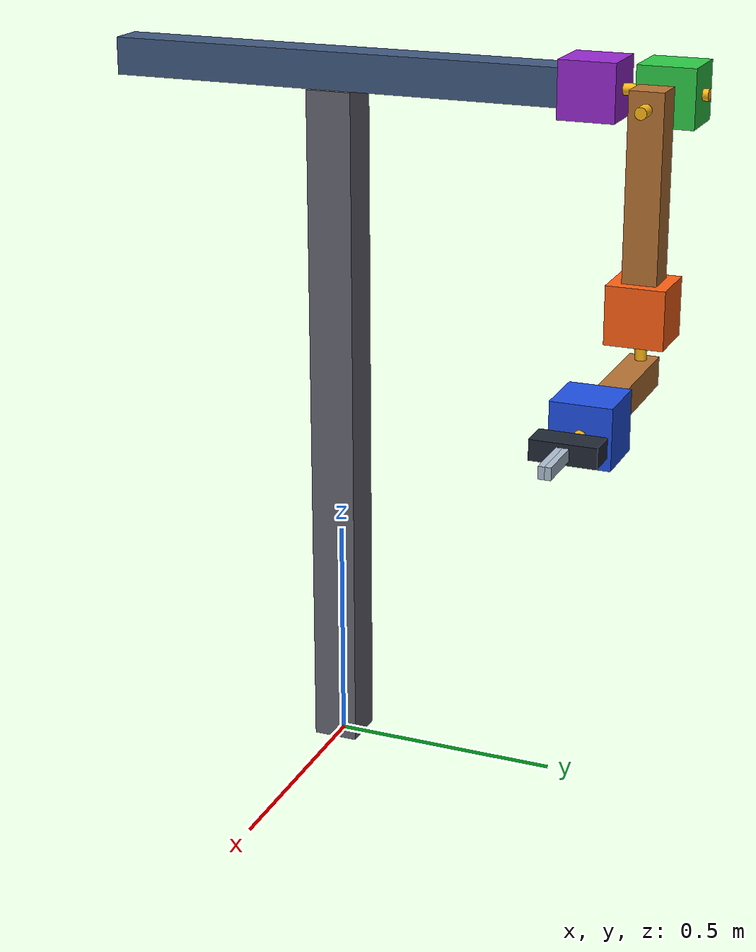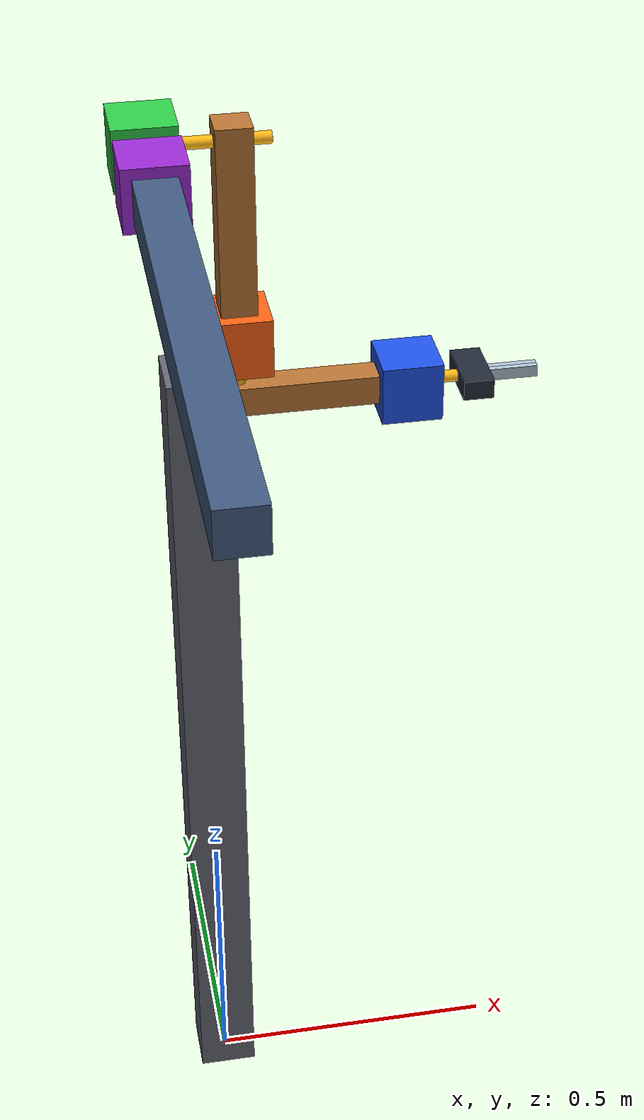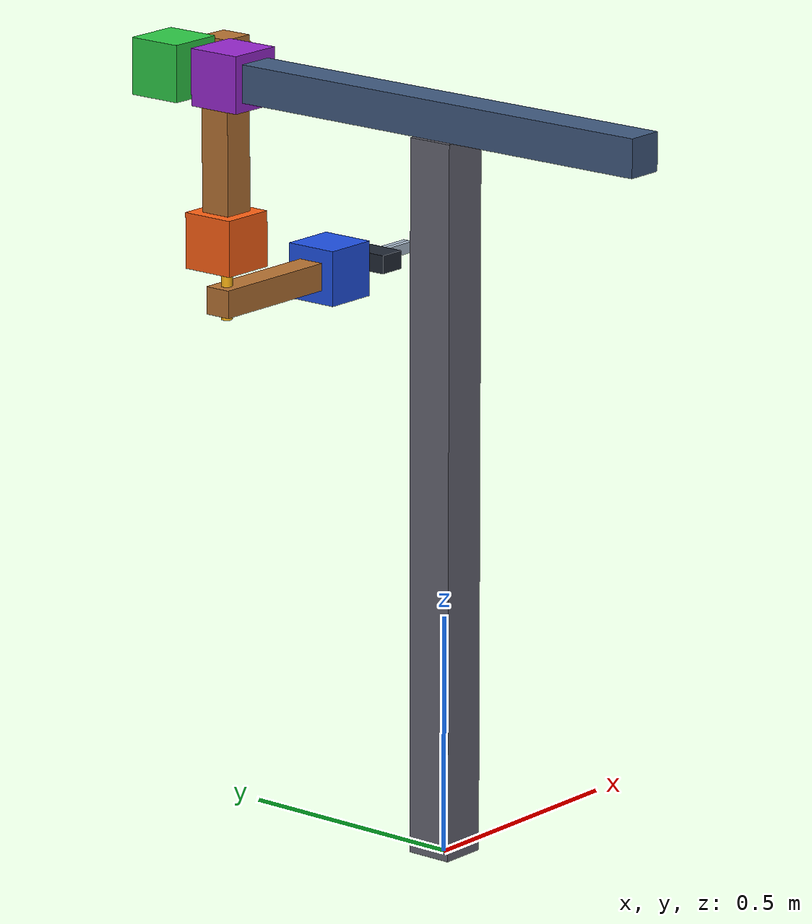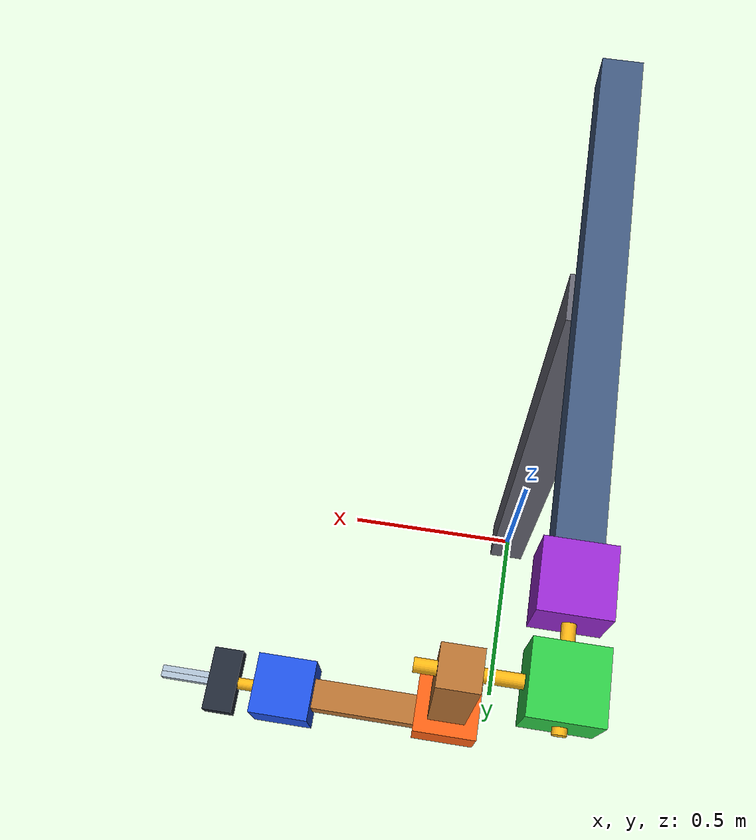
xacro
<?xml version="1.0"?>
<robot name="arm_rig" xmlns:xacro="http://www.ros.org/wiki/xacro">

  <!-- ================= parameters ================= -->

  <!-- vertical stem -->
  <xacro:arg name="stem_height" default="1.5"/>
  <xacro:arg name="stem_width"  default="0.10"/>
  <xacro:arg name="stem_depth"  default="0.10"/>

  <!-- horizontal crossbar: spans left-right along +/-Y -->
  <xacro:arg name="crossbar_length"    default="1.00"/>
  <xacro:arg name="crossbar_thickness" default="0.08"/>
  <xacro:arg name="crossbar_depth"     default="0.08"/>

  <xacro:arg name="density" default="500"/>
  <xacro:property name="rho" value="$(arg density)"/>

  <xacro:property name="sh" value="$(arg stem_height)"/>
  <xacro:property name="sw" value="$(arg stem_width)"/>
  <xacro:property name="sd" value="$(arg stem_depth)"/>
  <xacro:property name="stem_mass" value="${rho*sd*sw*sh}"/>

  <xacro:property name="cl" value="$(arg crossbar_length)"/>
  <xacro:property name="ct" value="$(arg crossbar_thickness)"/>
  <xacro:property name="cd" value="$(arg crossbar_depth)"/>
  <xacro:property name="crossbar_mass" value="${rho*cd*cl*ct}"/>

  <!-- upper arm: hangs from the right end of the crossbar.
       Length is a quarter of the stem height. -->
  <xacro:arg name="upper_arm_width" default="0.07"/>
  <xacro:arg name="upper_arm_depth" default="0.07"/>

  <xacro:property name="ual" value="${sh/4.0}"/>
  <xacro:property name="uaw" value="$(arg upper_arm_width)"/>
  <xacro:property name="uad" value="$(arg upper_arm_depth)"/>
  <xacro:property name="upper_arm_mass" value="${rho*uad*uaw*ual}"/>

  <!-- Effective actuator density approximates a hollow housing plus motor.
       Change to measured mass / external volume when selecting hardware. -->
  <xacro:arg name="actuator_density" default="1200"/>
  <xacro:arg name="shaft_density" default="7800"/>
  <xacro:property name="actuator_rho" value="$(arg actuator_density)"/>
  <xacro:property name="shaft_rho" value="$(arg shaft_density)"/>
  <xacro:property name="actuator_size" value="${1.2*max(sw, sd, ct, cd)}"/>
  <xacro:property name="shaft_radius" value="${actuator_size/10.0}"/>
  <xacro:property name="shaft_gap" value="${actuator_size/3.0}"/>
  <xacro:property name="shaft_cap" value="${actuator_size/10.0}"/>
  <xacro:property name="shaft_insert" value="${actuator_size/5.0}"/>
  <xacro:property name="transfer_shaft_length" value="${shaft_insert+shaft_gap+actuator_size+shaft_cap}"/>
  <xacro:property name="transfer_shaft_center" value="${transfer_shaft_length/2.0-shaft_insert}"/>
  <xacro:property name="next_housing_offset" value="${shaft_gap+actuator_size/2.0}"/>
    <!-- Forearm length follows the stem; all motor cubes retain the same size.
      Finger stroke is fixed at 40 mm per side (80 mm total aperture). -->
    <xacro:property name="fal" value="${sh/5.0}"/>
    <xacro:property name="faw" value="${uaw*0.85}"/>
    <xacro:property name="fah" value="${uad*0.85}"/>
    <xacro:property name="elbow_shaft_length" value="${shaft_insert+shaft_gap+fah+shaft_cap}"/>
    <xacro:property name="elbow_shaft_center" value="${elbow_shaft_length/2.0-shaft_insert}"/>
    <xacro:property name="gripper_x" value="${actuator_size/2.0}"/>
    <xacro:property name="finger_width" value="${actuator_size/10.0}"/>
    <xacro:property name="finger_height" value="${actuator_size/5.0}"/>
    <xacro:property name="finger_length" value="${actuator_size*5.0/6.0}"/>
    <xacro:property name="gripper_y" value="${0.08+4*finger_width}"/>
    <xacro:property name="gripper_z" value="${actuator_size/3.0}"/>
    <xacro:property name="gripper_shaft_length" value="${shaft_insert+shaft_gap+gripper_x/2.0}"/>

  <!-- which end of the crossbar the arm hangs from: +1 or -1 along Y -->
  <xacro:arg name="arm_side" default="1"/>
  <xacro:property name="side" value="$(arg arm_side)"/>

  <xacro:property name="shoulder_y" value="${side*(cl/2.0+actuator_size/2.0)}"/>
  <xacro:property name="shoulder_z" value="${ct/2.0}"/>

  <!-- Actuator geometry only: joints still use passive damping/friction. -->
  <xacro:property name="shoulder_damping"  value="0.2"/>
  <xacro:property name="shoulder_friction" value="0.1"/>

  <material name="grey">
    <color rgba="0.4 0.4 0.45 1.0"/>
  </material>

  <material name="steel_blue">
    <color rgba="0.25 0.35 0.5 1.0"/>
  </material>

  <material name="copper">
    <color rgba="0.72 0.45 0.20 1.0"/>
  </material>

  <material name="actuator_purple">
    <color rgba="0.60 0.16 0.82 1"/>
  </material>
  <material name="actuator_green">
    <color rgba="0.18 0.80 0.28 1"/>
  </material>
  <material name="shaft_gold">
    <color rgba="1.0 0.72 0.08 1"/>
  </material>
  <material name="actuator_orange"><color rgba="1.0 0.38 0.08 1"/></material>
  <material name="actuator_blue"><color rgba="0.12 0.32 0.90 1"/></material>
  <material name="actuator_silver"><color rgba="0.68 0.75 0.82 1"/></material>
  <material name="gripper_dark"><color rgba="0.13 0.16 0.21 1"/></material>

  <xacro:macro name="solid_box" params="name x y z xyz density colour gazebo_colour">
    <xacro:property name="box_mass" value="${density*x*y*z}"/>
    <link name="${name}">
      <visual>
        <origin xyz="${xyz}"/>
        <geometry><box size="${x} ${y} ${z}"/></geometry>
        <material name="${colour}"/>
      </visual>
      <collision>
        <origin xyz="${xyz}"/>
        <geometry><box size="${x} ${y} ${z}"/></geometry>
      </collision>
      <inertial>
        <origin xyz="${xyz}"/>
        <mass value="${box_mass}"/>
        <inertia ixx="${box_mass*(y*y+z*z)/12.0}" ixy="0" ixz="0"
                 iyy="${box_mass*(x*x+z*z)/12.0}" iyz="0"
                 izz="${box_mass*(x*x+y*y)/12.0}"/>
      </inertial>
    </link>
    <gazebo reference="${name}"><material>${gazebo_colour}</material><mu1>0.8</mu1><mu2>0.8</mu2></gazebo>
  </xacro:macro>

  <!-- Separate links retain the stator/output relationship and individual
       colours in both URDF viewers and Gazebo's fixed-joint conversion. -->
  <xacro:macro name="actuator_cube" params="name colour gazebo_colour">
    <link name="${name}">
      <visual>
        <geometry><box size="${actuator_size} ${actuator_size} ${actuator_size}"/></geometry>
        <material name="${colour}"/>
      </visual>
      <collision>
        <geometry><box size="${actuator_size} ${actuator_size} ${actuator_size}"/></geometry>
      </collision>
      <inertial>
        <mass value="${actuator_rho*actuator_size**3}"/>
        <inertia ixx="${actuator_rho*actuator_size**5/6.0}" ixy="0" ixz="0"
                 iyy="${actuator_rho*actuator_size**5/6.0}" iyz="0"
                 izz="${actuator_rho*actuator_size**5/6.0}"/>
      </inertial>
    </link>
    <gazebo reference="${name}"><material>${gazebo_colour}</material></gazebo>
  </xacro:macro>

  <xacro:macro name="output_shaft" params="name length xyz rpy">
    <xacro:property name="mass" value="${shaft_rho*pi*shaft_radius**2*length}"/>
    <link name="${name}">
      <visual>
        <origin xyz="${xyz}" rpy="${rpy}"/>
        <geometry><cylinder radius="${shaft_radius}" length="${length}"/></geometry>
        <material name="shaft_gold"/>
      </visual>
      <collision>
        <origin xyz="${xyz}" rpy="${rpy}"/>
        <geometry><cylinder radius="${shaft_radius}" length="${length}"/></geometry>
      </collision>
      <inertial>
        <origin xyz="${xyz}" rpy="${rpy}"/>
        <mass value="${mass}"/>
        <inertia ixx="${mass*(3*shaft_radius**2+length**2)/12.0}" ixy="0" ixz="0"
                 iyy="${mass*(3*shaft_radius**2+length**2)/12.0}" iyz="0"
                 izz="${mass*shaft_radius**2/2.0}"/>
      </inertial>
    </link>
    <gazebo reference="${name}"><material>Gazebo/Yellow</material></gazebo>
  </xacro:macro>

  <!-- ================= links ================= -->

  <!-- Anchor. A link literally named "world" is what tells Gazebo to weld
       the model to the ground plane. -->
  <link name="world"/>

  <!-- vertical stem -->
  <link name="stem">
    <visual>
      <origin xyz="0 0 ${sh/2}" rpy="0 0 0"/>
      <geometry>
        <box size="${sd} ${sw} ${sh}"/>
      </geometry>
      <material name="grey"/>
    </visual>

    <collision>
      <origin xyz="0 0 ${sh/2}" rpy="0 0 0"/>
      <geometry>
        <box size="${sd} ${sw} ${sh}"/>
      </geometry>
    </collision>

    <inertial>
      <origin xyz="0 0 ${sh/2}" rpy="0 0 0"/>
      <mass value="${stem_mass}"/>
      <!-- solid cuboid about its own centre -->
      <inertia
        ixx="${stem_mass*(sw*sw + sh*sh)/12.0}" ixy="0.0" ixz="0.0"
        iyy="${stem_mass*(sd*sd + sh*sh)/12.0}" iyz="0.0"
        izz="${stem_mass*(sd*sd + sw*sw)/12.0}"/>
    </inertial>
  </link>

  <!-- horizontal crossbar.
       Long axis is Y, so the box is (depth, length, thickness) in X Y Z.
       No rpy needed: the geometry is simply authored wide instead of tall. -->
  <link name="crossbar">
    <visual>
      <origin xyz="0 0 ${ct/2}" rpy="0 0 0"/>
      <geometry>
        <box size="${cd} ${cl} ${ct}"/>
      </geometry>
      <material name="steel_blue"/>
    </visual>

    <collision>
      <origin xyz="0 0 ${ct/2}" rpy="0 0 0"/>
      <geometry>
        <box size="${cd} ${cl} ${ct}"/>
      </geometry>
    </collision>

    <inertial>
      <origin xyz="0 0 ${ct/2}" rpy="0 0 0"/>
      <mass value="${crossbar_mass}"/>
      <inertia
        ixx="${crossbar_mass*(cl*cl + ct*ct)/12.0}" ixy="0.0" ixz="0.0"
        iyy="${crossbar_mass*(cd*cd + ct*ct)/12.0}" iyz="0.0"
        izz="${crossbar_mass*(cd*cd + cl*cl)/12.0}"/>
    </inertial>
  </link>

  <xacro:actuator_cube name="pitch_actuator" colour="actuator_purple" gazebo_colour="Gazebo/Purple"/>
  <xacro:output_shaft name="shoulder_pitch_shaft" length="${transfer_shaft_length}"
                      xyz="0 ${side*transfer_shaft_center} 0" rpy="${pi/2.0} 0 0"/>
  <xacro:actuator_cube name="roll_actuator" colour="actuator_green" gazebo_colour="Gazebo/Green"/>
  <xacro:output_shaft name="shoulder_roll_shaft" length="${transfer_shaft_length}"
                      xyz="${transfer_shaft_center} 0 0" rpy="0 ${pi/2.0} 0"/>
  <!-- Upper arm frame sits at the roll-shaft axis; its body hangs downward. -->
  <link name="upper_arm">
    <visual>
      <origin xyz="0 0 ${-ual/2}" rpy="0 0 0"/>
      <geometry>
        <box size="${uad} ${uaw} ${ual}"/>
      </geometry>
      <material name="copper"/>
    </visual>

    <collision>
      <origin xyz="0 0 ${-ual/2}" rpy="0 0 0"/>
      <geometry>
        <box size="${uad} ${uaw} ${ual}"/>
      </geometry>
    </collision>

    <inertial>
      <origin xyz="0 0 ${-ual/2}" rpy="0 0 0"/>
      <mass value="${upper_arm_mass}"/>
      <inertia
        ixx="${upper_arm_mass*(uaw*uaw + ual*ual)/12.0}" ixy="0.0" ixz="0.0"
        iyy="${upper_arm_mass*(uad*uad + ual*ual)/12.0}" iyz="0.0"
        izz="${upper_arm_mass*(uad*uad + uaw*uaw)/12.0}"/>
    </inertial>
  </link>

  <!-- Elbow output runs along the upper arm and through the forearm thickness. -->
  <xacro:actuator_cube name="elbow_actuator" colour="actuator_orange" gazebo_colour="Gazebo/Orange"/>
  <xacro:output_shaft name="elbow_shaft" length="${elbow_shaft_length}"
                      xyz="0 0 ${-elbow_shaft_center}" rpy="0 0 0"/>
  <xacro:solid_box name="forearm" x="${fal}" y="${faw}" z="${fah}"
                   xyz="${fal/2.0} 0 0" density="${rho}" colour="copper" gazebo_colour="Gazebo/Orange"/>
  <xacro:actuator_cube name="wrist_roll_actuator" colour="actuator_blue" gazebo_colour="Gazebo/Blue"/>
  <xacro:output_shaft name="wrist_roll_shaft" length="${gripper_shaft_length}"
                      xyz="${gripper_shaft_length/2.0-shaft_insert} 0 0" rpy="0 ${pi/2.0} 0"/>
  <xacro:solid_box name="gripper_base" x="${gripper_x}" y="${gripper_y}" z="${gripper_z}"
                   xyz="0 0 0" density="${actuator_rho}" colour="gripper_dark" gazebo_colour="Gazebo/DarkGrey"/>
  <xacro:solid_box name="gripper_left_finger" x="${finger_length}" y="${finger_width}" z="${finger_height}"
                   xyz="${finger_length/2.0} 0 0" density="${actuator_rho}" colour="actuator_silver" gazebo_colour="Gazebo/White"/>
  <xacro:solid_box name="gripper_right_finger" x="${finger_length}" y="${finger_width}" z="${finger_height}"
                   xyz="${finger_length/2.0} 0 0" density="${actuator_rho}" colour="actuator_silver" gazebo_colour="Gazebo/White"/>
  <!-- Virtual TCP, fixed to the gripper body; tiny inertia keeps Gazebo's
       URDF conversion well-defined. No visual/collision at the tracked point. -->
  <link name="gripper_tool">
    <inertial><mass value="0.001"/><inertia ixx="1e-8" ixy="0" ixz="0" iyy="1e-8" iyz="0" izz="1e-8"/></inertial>
  </link>

  <!-- ================= joints ================= -->

  <joint name="world_to_stem" type="fixed">
    <parent link="world"/>
    <child  link="stem"/>
    <origin xyz="0 0 0" rpy="0 0 0"/>
  </joint>

  <!-- Lands the crossbar frame exactly on the top face of the stem. -->
  <joint name="stem_to_crossbar" type="fixed">
    <parent link="stem"/>
    <child  link="crossbar"/>
    <origin xyz="0 0 ${sh}" rpy="0 0 0"/>
  </joint>

  <!-- Pitch is FIRST, as on the G1; the purple stator stays on the bar. -->
  <joint name="crossbar_to_pitch_actuator" type="fixed">
    <parent link="crossbar"/>
    <child link="pitch_actuator"/>
    <origin xyz="0 ${shoulder_y} ${shoulder_z}" rpy="0 0 0"/>
  </joint>

  <!-- Preserve the pitch joint name used by the GUI. -->
  <joint name="shoulder_joint" type="continuous">
    <parent link="pitch_actuator"/>
    <child link="shoulder_pitch_shaft"/>
    <origin xyz="0 ${side*actuator_size/2.0} 0" rpy="0 0 0"/>
    <axis xyz="0 1 0"/>
    <dynamics damping="${shoulder_damping}" friction="${shoulder_friction}"/>
  </joint>

  <joint name="pitch_output_to_roll_actuator" type="fixed">
    <parent link="shoulder_pitch_shaft"/>
    <child link="roll_actuator"/>
    <origin xyz="0 ${side*next_housing_offset} 0" rpy="0 0 0"/>
  </joint>

  <!-- Roll is SECOND; the output is centred on the green cube's X face. -->
  <joint name="shoulder_roll_joint" type="continuous">
    <parent link="roll_actuator"/>
    <child link="shoulder_roll_shaft"/>
    <origin xyz="${actuator_size/2.0} 0 0" rpy="0 0 0"/>
    <axis xyz="1 0 0"/>
    <dynamics damping="${shoulder_damping}" friction="${shoulder_friction}"/>
  </joint>

  <!-- Attach the upper arm directly on the roll-shaft axis. -->
  <joint name="roll_output_to_upper_arm" type="fixed">
    <parent link="shoulder_roll_shaft"/>
    <child link="upper_arm"/>
    <origin xyz="${next_housing_offset} 0 ${uad/2.0}" rpy="0 0 0"/>
  </joint>

  <joint name="upper_arm_to_elbow_actuator" type="fixed">
    <parent link="upper_arm"/><child link="elbow_actuator"/>
    <origin xyz="0 0 ${-ual-actuator_size/2.0}"/>
  </joint>
  <joint name="elbow_joint" type="continuous">
    <parent link="elbow_actuator"/><child link="elbow_shaft"/>
    <origin xyz="0 0 ${-actuator_size/2.0}"/><axis xyz="0 0 1"/>
    <dynamics damping="${shoulder_damping}" friction="${shoulder_friction}"/>
  </joint>
  <joint name="elbow_output_to_forearm" type="fixed">
    <parent link="elbow_shaft"/><child link="forearm"/>
    <origin xyz="${-fah/2.0} 0 ${-(shaft_gap+fah/2.0)}"/>
  </joint>
  <joint name="forearm_to_wrist_roll" type="fixed">
    <parent link="forearm"/><child link="wrist_roll_actuator"/>
    <origin xyz="${fal+actuator_size/2.0} 0 0"/>
  </joint>
  <joint name="wrist_roll_joint" type="continuous">
    <parent link="wrist_roll_actuator"/><child link="wrist_roll_shaft"/>
    <origin xyz="${actuator_size/2.0} 0 0"/><axis xyz="1 0 0"/>
    <dynamics damping="${shoulder_damping}" friction="${shoulder_friction}"/>
  </joint>
  <!-- Centred +X shaft enters the back of the gripper body. Wrist roll
       rotates the jaws around the TCP axis without orbiting their midpoint. -->
  <joint name="wrist_roll_to_gripper" type="fixed">
    <parent link="wrist_roll_shaft"/><child link="gripper_base"/>
    <origin xyz="${shaft_gap+gripper_x/2.0} 0 0"/>
  </joint>
  <joint name="gripper_left_joint" type="prismatic">
    <parent link="gripper_base"/><child link="gripper_left_finger"/>
    <origin xyz="${gripper_x/2.0} ${finger_width/2.0} 0"/><axis xyz="0 1 0"/>
    <limit lower="0" upper="0.04" effort="20" velocity="0.1"/>
    <dynamics damping="2" friction="0.1"/>
  </joint>
  <joint name="gripper_right_joint" type="prismatic">
    <parent link="gripper_base"/><child link="gripper_right_finger"/>
    <origin xyz="${gripper_x/2.0} ${-finger_width/2.0} 0"/><axis xyz="0 -1 0"/>
    <limit lower="0" upper="0.04" effort="20" velocity="0.1"/>
    <dynamics damping="2" friction="0.1"/>
  </joint>
  <joint name="gripper_to_tool" type="fixed">
    <parent link="gripper_base"/><child link="gripper_tool"/>
    <origin xyz="${gripper_x/2.0+finger_length} 0 0"/>
  </joint>

  <!-- ================= gazebo ================= -->

  <gazebo reference="stem">
    <material>Gazebo/Grey</material>
    <mu1>0.8</mu1>
    <mu2>0.8</mu2>
  </gazebo>

  <gazebo reference="crossbar">
    <material>Gazebo/SkyBlue</material>
    <mu1>0.8</mu1>
    <mu2>0.8</mu2>
  </gazebo>

  <gazebo reference="upper_arm">
    <material>Gazebo/Orange</material>
    <mu1>0.8</mu1>
    <mu2>0.8</mu2>
  </gazebo>

  <!-- Exposes /gazebo/get_link_state, /gazebo/apply_body_wrench, etc. so the
       rig can be poked from the command line later. -->
  <gazebo>
    <plugin name="gazebo_ros_state" filename="libgazebo_ros_state.so">
      <robotNamespace>/</robotNamespace>
      <updateRate>50.0</updateRate>
    </plugin>
  </gazebo>

</robot>
